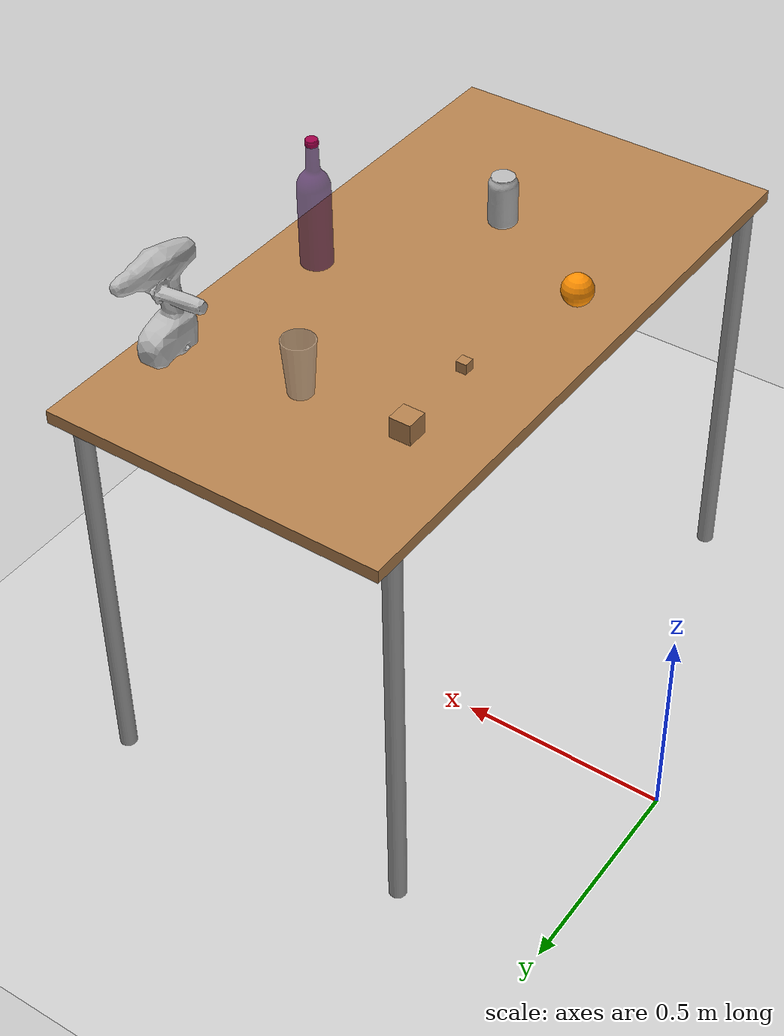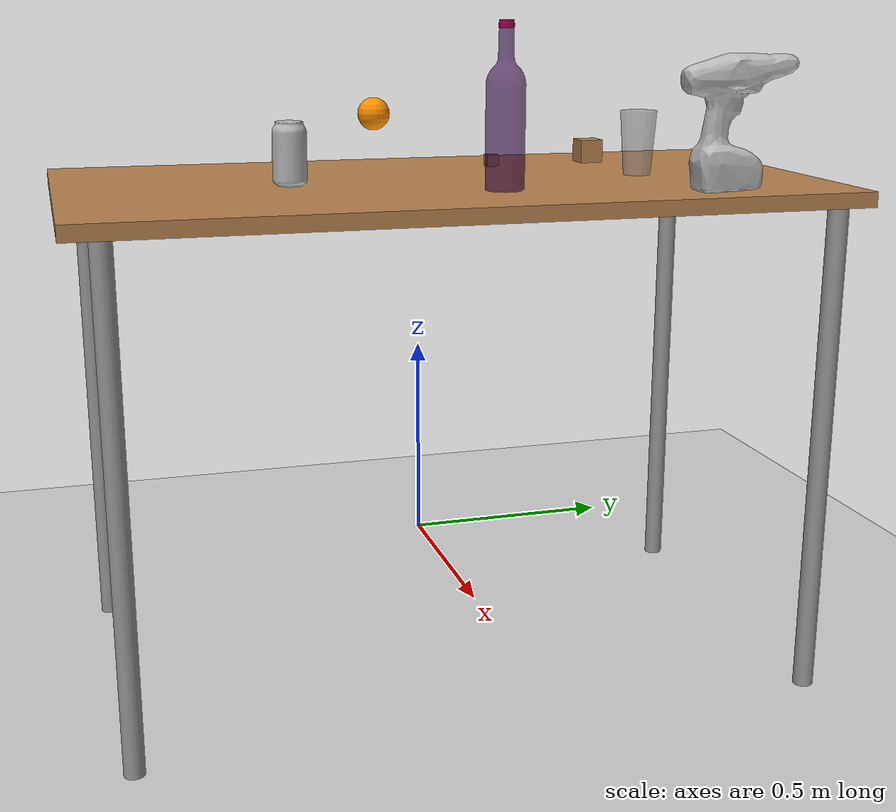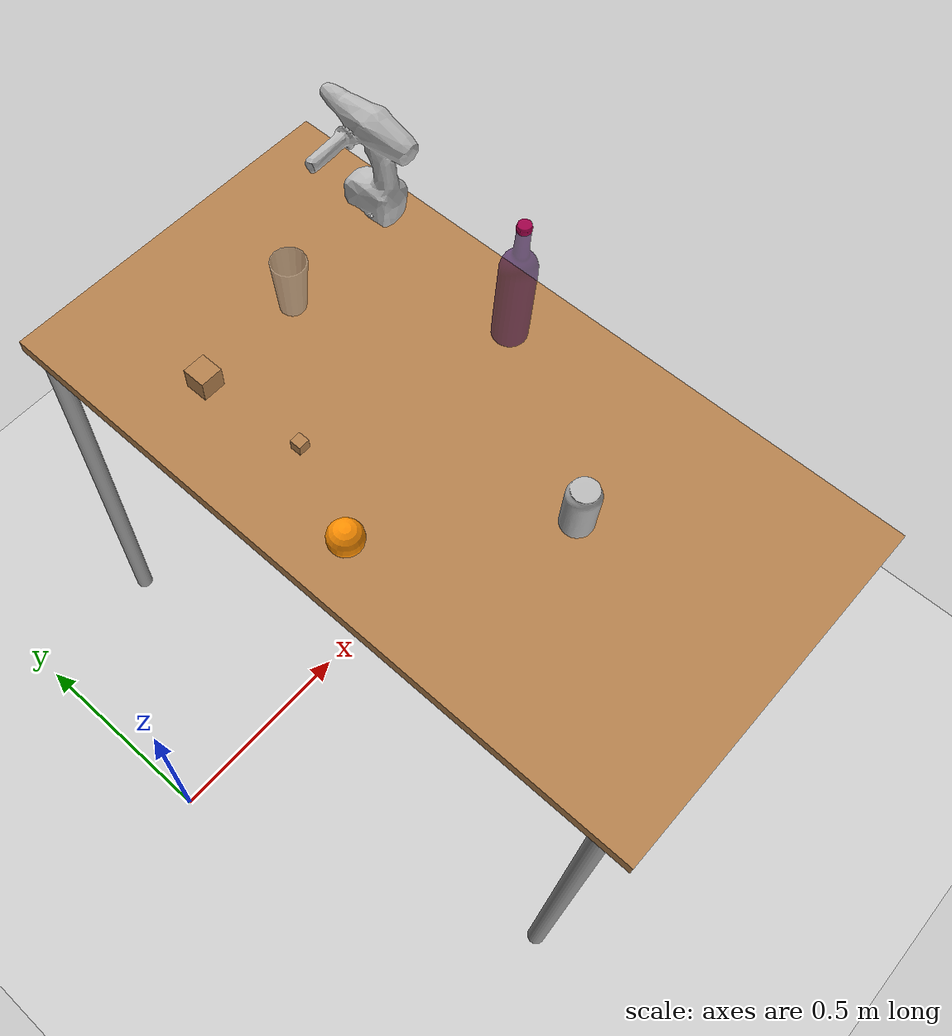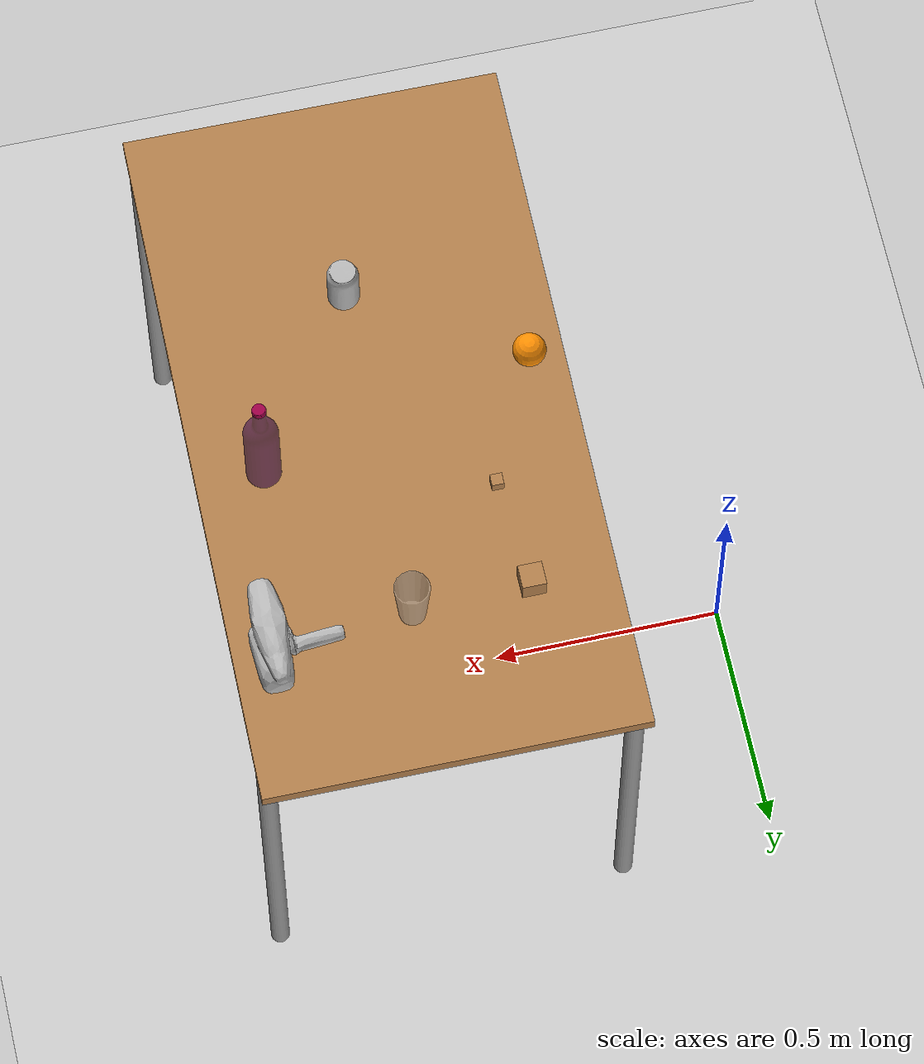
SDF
<sdf version="1.6">
 <world name="default">
  <light name="sun" type="directional">
   <pose>0 0 10 0 -0 0</pose>
   <diffuse>0.8 0.8 0.8 1</diffuse>
   <specular>0.2 0.2 0.2 1</specular>
   <attenuation>
    <range>1000</range>
    <constant>0.9</constant>
    <linear>0.01</linear>
    <quadratic>0.001</quadratic>
   </attenuation>
   <direction>-0.5 0.1 -0.9</direction>
  </light>
  <model name="ground_plane">
   <static>1</static>
   <link name="link">
    <collision name="collision">
     <geometry><plane><normal>0 0 1</normal><size>100 100</size></plane></geometry>
     <surface>
      <contact><collide_bitmask>65535</collide_bitmask></contact>
      <friction><ode><mu>100</mu><mu2>50</mu2></ode></friction>
     </surface>
    </collision>
    <visual name="visual">
     <cast_shadows>0</cast_shadows>
     <geometry><plane><normal>0 0 1</normal><size>100 100</size></plane></geometry>
     <material>
      <script><uri>file://media/materials/scripts/gazebo.material</uri><name>Gazebo/Grey</name></script>
     </material>
    </visual>
   </link>
  </model>
  <gravity>0 0 -9.8</gravity>
  <magnetic_field>6e-06 2.3e-05 -4.2e-05</magnetic_field>
  <atmosphere type="adiabatic"/>
  <physics name="default_physics" default="0" type="ode">
   <max_step_size>0.001</max_step_size>
   <real_time_factor>1</real_time_factor>
   <real_time_update_rate>1000</real_time_update_rate>
  </physics>
  <scene><ambient>0.4 0.4 0.4 1</ambient><background>0.7 0.7 0.7 1</background><shadows>1</shadows></scene>
  <audio><device>default</device></audio>
  <spherical_coordinates>
   <surface_model>EARTH_WGS84</surface_model>
   <latitude_deg>0</latitude_deg>
   <longitude_deg>0</longitude_deg>
   <elevation>0</elevation>
   <heading_deg>0</heading_deg>
  </spherical_coordinates>
  <model name="table">
   <static>1</static>
   <link name="link">
    <collision name="surface">
     <pose>0 0 1 0 -0 0</pose>
     <geometry><box><size>1.5 0.8 0.03</size></box></geometry>
     <surface><friction><ode><mu>0.6</mu><mu2>0.6</mu2></ode></friction></surface>
    </collision>
    <visual name="visual1">
     <pose>0 0 1 0 -0 0</pose>
     <geometry><box><size>1.5 0.8 0.03</size></box></geometry>
     <material>
      <script><uri>file://media/materials/scripts/gazebo.material</uri><name>Gazebo/Wood</name></script>
     </material>
    </visual>
    <collision name="front_left_leg">
     <pose>0.68 0.38 0.5 0 -0 0</pose>
     <geometry><cylinder><radius>0.02</radius><length>1</length></cylinder></geometry>
    </collision>
    <visual name="front_left_leg">
     <pose>0.68 0.38 0.5 0 -0 0</pose>
     <geometry><cylinder><radius>0.02</radius><length>1</length></cylinder></geometry>
     <material>
      <script><uri>file://media/materials/scripts/gazebo.material</uri><name>Gazebo/Grey</name></script>
     </material>
    </visual>
    <collision name="front_right_leg">
     <pose>0.68 -0.38 0.5 0 -0 0</pose>
     <geometry><cylinder><radius>0.02</radius><length>1</length></cylinder></geometry>
    </collision>
    <visual name="front_right_leg">
     <pose>0.68 -0.38 0.5 0 -0 0</pose>
     <geometry><cylinder><radius>0.02</radius><length>1</length></cylinder></geometry>
     <material>
      <script><uri>file://media/materials/scripts/gazebo.material</uri><name>Gazebo/Grey</name></script>
     </material>
    </visual>
    <collision name="back_right_leg">
     <pose>-0.68 -0.38 0.5 0 -0 0</pose>
     <geometry><cylinder><radius>0.02</radius><length>1</length></cylinder></geometry>
    </collision>
    <visual name="back_right_leg">
     <pose>-0.68 -0.38 0.5 0 -0 0</pose>
     <geometry><cylinder><radius>0.02</radius><length>1</length></cylinder></geometry>
     <material>
      <script><uri>file://media/materials/scripts/gazebo.material</uri><name>Gazebo/Grey</name></script>
     </material>
    </visual>
    <collision name="back_left_leg">
     <pose>-0.68 0.38 0.5 0 -0 0</pose>
     <geometry><cylinder><radius>0.02</radius><length>1</length></cylinder></geometry>
    </collision>
    <visual name="back_left_leg">
     <pose>-0.68 0.38 0.5 0 -0 0</pose>
     <geometry><cylinder><radius>0.02</radius><length>1</length></cylinder></geometry>
     <material>
      <script><uri>file://media/materials/scripts/gazebo.material</uri><name>Gazebo/Grey</name></script>
     </material>
    </visual>
   </link>
   <pose>0.712956 -0.151487 0 0 0 -1.57673</pose>
  </model>
  <model name="coke_can">
   <link name="link">
    <inertial>
     <pose>0 0 0.06 0 -0 0</pose>
     <mass>0.39</mass>
     <inertia>
      <ixx>0.00055575</ixx>
      <ixy>0</ixy>
      <ixz>0</ixz>
      <iyy>0.00055575</iyy>
      <iyz>0</iyz>
      <izz>0.0001755</izz>
     </inertia>
    </inertial>
    <collision name="collision">
     <pose>0.003937 0.004724 -0.18 0 -0 0</pose>
     <geometry><mesh><uri>model://coke_can/meshes/coke_can.dae</uri></mesh></geometry>
     <surface>
      <friction><ode><mu>1</mu><mu2>1</mu2></ode></friction>
      <contact><ode><kp>1e+07</kp><kd>1</kd><min_depth>0.001</min_depth><max_vel>0.1</max_vel></ode></contact>
     </surface>
    </collision>
    <visual name="visual">
     <pose>0.003937 0.004724 -0.18 0 -0 0</pose>
     <geometry><mesh><uri>model://coke_can/meshes/coke_can.dae</uri></mesh></geometry>
    </visual>
   </link>
   <pose>0.730995 -0.451828 1.0124 -0.008206 0.002932 -0.001745</pose>
  </model>
  <model name="drill">
   <link name="link">
    <inertial>
     <pose>-0.00637 -0.008 0.13254 0 -0 0</pose>
     <inertia>
      <ixx>0.0133113</ixx>
      <ixy>-0.00030365</ixy>
      <ixz>-0.00034148</ixz>
      <iyy>0.0115766</iyy>
      <iyz>0.00088073</iyz>
      <izz>0.00378028</izz>
     </inertia>
     <mass>1.50252</mass>
    </inertial>
    <collision name="collision">
     <pose>0 0 -0.09 0 -0 0</pose>
     <geometry><mesh><uri>model://cordless_drill/meshes/cordless_drill.stl</uri></mesh></geometry>
     <surface><contact><ode><max_vel>0.1</max_vel><min_depth>0.001</min_depth></ode></contact></surface>
    </collision>
    <visual name="visual">
     <pose>0 0 -0.09 0 -0 0</pose>
     <geometry><mesh><uri>model://cordless_drill/meshes/cordless_drill.dae</uri></mesh></geometry>
    </visual>
   </link>
   <pose>1.03968 0.327695 1.01293 1.1e-05 -4.5e-05 0.001731</pose>
  </model>
  <model name="plastic_cup">
   <link name="link">
    <pose>0 0 0.065 0 -0 0</pose>
    <inertial>
     <mass>0.0599</mass>
     <inertia>
      <ixx>0.000302896</ixx>
      <ixy>0</ixy>
      <ixz>0</ixz>
      <iyy>0.000302896</iyy>
      <iyz>0</iyz>
      <izz>3.28764e-05</izz>
     </inertia>
    </inertial>
    <collision name="collision">
     <geometry><mesh><uri>model://plastic_cup/meshes/plastic_cup.dae</uri></mesh></geometry>
     <surface>
      <contact>
       <poissons_ratio>0.35</poissons_ratio>
       <elastic_modulus>3.10264e+09</elastic_modulus>
       <ode><kp>100000</kp><kd>100</kd><max_vel>100</max_vel><min_depth>0.001</min_depth></ode>
      </contact>
      <friction>
       <torsional>
        <coefficient>1</coefficient>
        <use_patch_radius>0</use_patch_radius>
        <surface_radius>0.01</surface_radius>
       </torsional>
      </friction>
     </surface>
    </collision>
    <visual name="visual">
     <geometry><mesh><uri>model://plastic_cup/meshes/plastic_cup.dae</uri></mesh></geometry>
     <material>
      <script><uri>file://media/materials/scripts/gazebo.material</uri><name>Gazebo/GreyTransparent</name></script>
     </material>
    </visual>
   </link>
   <pose>0.740697 0.260254 1.02171 0.002712 -0.001813 -0.00052</pose>
  </model>
  <model name="wood_cube_5cm">
   <link name="link">
    <pose>0 0 0.025 0 -0 0</pose>
    <inertial>
     <mass>0.0565</mass>
     <inertia>
      <ixx>2.35417e-05</ixx>
      <ixy>0</ixy>
      <ixz>0</ixz>
      <iyy>2.35417e-05</iyy>
      <iyz>0</iyz>
      <izz>2.35417e-05</izz>
     </inertia>
    </inertial>
    <collision name="collision">
     <geometry><box><size>0.05 0.05 0.05</size></box></geometry>
     <surface>
      <contact>
       <poissons_ratio>0.347</poissons_ratio>
       <elastic_modulus>8.8e+09</elastic_modulus>
       <ode><kp>100000</kp><kd>1</kd><max_vel>1</max_vel><min_depth>0.001</min_depth></ode>
      </contact>
      <friction>
       <torsional>
        <coefficient>1</coefficient>
        <use_patch_radius>0</use_patch_radius>
        <surface_radius>0.05</surface_radius>
       </torsional>
      </friction>
     </surface>
    </collision>
    <visual name="visual">
     <geometry><box><size>0.05 0.05 0.05</size></box></geometry>
     <material>
      <script><uri>file://media/materials/scripts/gazebo.material</uri><name>Gazebo/Wood</name></script>
     </material>
    </visual>
   </link>
   <pose>0.492319 0.258134 1.014 0 -0 0</pose>
  </model>
  <model name="wood_cube_2_5cm">
   <link name="link">
    <pose>0 0 0.0125 0 -0 0</pose>
    <inertial>
     <mass>0.0073</mass>
     <inertia>
      <ixx>7.60417e-07</ixx>
      <ixy>0</ixy>
      <ixz>0</ixz>
      <iyy>7.60417e-07</iyy>
      <iyz>0</iyz>
      <izz>7.60417e-07</izz>
     </inertia>
    </inertial>
    <collision name="collision">
     <geometry><box><size>0.025 0.025 0.025</size></box></geometry>
     <surface>
      <contact>
       <poissons_ratio>0.347</poissons_ratio>
       <elastic_modulus>8.8e+09</elastic_modulus>
       <ode><kp>100000</kp><kd>100</kd><max_vel>100</max_vel><min_depth>0.001</min_depth></ode>
      </contact>
      <friction>
       <torsional>
        <coefficient>1</coefficient>
        <use_patch_radius>0</use_patch_radius>
        <surface_radius>0.01</surface_radius>
       </torsional>
      </friction>
     </surface>
    </collision>
    <visual name="visual">
     <geometry><box><size>0.025 0.025 0.025</size></box></geometry>
     <material>
      <script><uri>file://media/materials/scripts/gazebo.material</uri><name>Gazebo/Wood</name></script>
     </material>
    </visual>
   </link>
   <pose>0.513319 0.02708 1.01445 -0.002642 -1e-06 0</pose>
  </model>
  <model name="bottle_red_wine">
   <link name="link_22">
    <pose>-0.038814 -0.033806 0.002754 0 -0 0</pose>
    <visual name="visual">
     <geometry><mesh><uri>model://bottle_red_wine/meshes/bottle.dae</uri><scale>1 1 1</scale></mesh></geometry>
     <material>
      <lighting>1</lighting>
      <ambient>0.215 0 0.305 1</ambient>
      <diffuse>0.215 0 0.305 1</diffuse>
      <specular>0.01 0.01 0.01 1</specular>
      <emissive>0 0 0 1</emissive>
      <shader type="vertex"><normal_map>__default__</normal_map></shader>
     </material>
     <transparency>0.4</transparency>
    </visual>
    <collision name="collision">
     <geometry><mesh><uri>model://bottle_red_wine/meshes/bottle.dae</uri><scale>1 1 1</scale></mesh></geometry>
    </collision>
   </link>
   <link name="link_23">
    <pose>-0.038814 -0.033806 0.002754 0 -0 0</pose>
    <inertial>
     <mass>1</mass>
     <inertia>
      <ixx>0.166667</ixx>
      <ixy>0</ixy>
      <ixz>0</ixz>
      <iyy>0.166667</iyy>
      <iyz>0</iyz>
      <izz>0.166667</izz>
     </inertia>
    </inertial>
    <visual name="visual">
     <geometry><mesh><uri>model://bottle_red_wine/meshes/cap.dae</uri><scale>1 1 1</scale></mesh></geometry>
     <material>
      <lighting>1</lighting>
      <ambient>0.623 0 0.282 1</ambient>
      <diffuse>0.623 0 0.282 1</diffuse>
      <specular>0.01 0.01 0.01 1</specular>
      <emissive>0 0 0 1</emissive>
      <shader type="vertex"><normal_map>__default__</normal_map></shader>
     </material>
    </visual>
    <collision name="collision">
     <geometry><mesh><uri>model://bottle_red_wine/meshes/cap.dae</uri><scale>1 1 1</scale></mesh></geometry>
    </collision>
   </link>
   <static>1</static>
   <pose>0.973684 -0.098634 1.02171 0 -0 0</pose>
  </model>
  <model name="sphere_o">
   <link name="link_1">
    <pose>0 0 0.1 0 -0 0</pose>
    <inertial>
     <mass>1</mass>
     <inertia><ixx>0.1</ixx><ixy>0</ixy><ixz>0</ixz><iyy>0.1</iyy><iyz>0</iyz><izz>0.1</izz></inertia>
    </inertial>
    <visual name="visual">
     <geometry><sphere><radius>0.035</radius></sphere></geometry>
     <material>
      <lighting>1</lighting>
      <script><uri>file://media/materials/scripts/gazebo.material</uri><name>Gazebo/Grey</name></script>
      <ambient>1 0.561 0 1</ambient>
      <diffuse>1 0.561 0 1</diffuse>
      <specular>0 0 0 1</specular>
      <emissive>0 0 0 1</emissive>
      <shader type="vertex"><normal_map>__default__</normal_map></shader>
     </material>
    </visual>
    <collision name="collision">
     <geometry><sphere><radius>0.035</radius></sphere></geometry>
     <surface>
      <friction>
       <ode><mu>1</mu><mu2>1</mu2><fdir1>0 0 0</fdir1><slip1>0</slip1><slip2>0</slip2></ode>
       <torsional>
        <coefficient>1</coefficient>
        <patch_radius>0</patch_radius>
        <surface_radius>0</surface_radius>
        <use_patch_radius>1</use_patch_radius>
        <ode><slip>0</slip></ode>
       </torsional>
      </friction>
      <bounce><restitution_coefficient>0</restitution_coefficient><threshold>1e+06</threshold></bounce>
      <contact>
       <collide_without_contact>0</collide_without_contact>
       <collide_without_contact_bitmask>1</collide_without_contact_bitmask>
       <collide_bitmask>1</collide_bitmask>
       <ode>
        <soft_cfm>0</soft_cfm>
        <soft_erp>0.2</soft_erp>
        <kp>1e+13</kp>
        <kd>1</kd>
        <max_vel>0.01</max_vel>
        <min_depth>0</min_depth>
       </ode>
       <bullet>
        <split_impulse>1</split_impulse>
        <split_impulse_penetration_threshold>-0.01</split_impulse_penetration_threshold>
        <soft_cfm>0</soft_cfm>
        <soft_erp>0.2</soft_erp>
        <kp>1e+13</kp>
        <kd>1</kd>
       </bullet>
      </contact>
     </surface>
    </collision>
   </link>
   <static>1</static>
   <pose>0.394272 -0.204676 1.02171 0 -0 0</pose>
  </model>
 </world>
</sdf>
